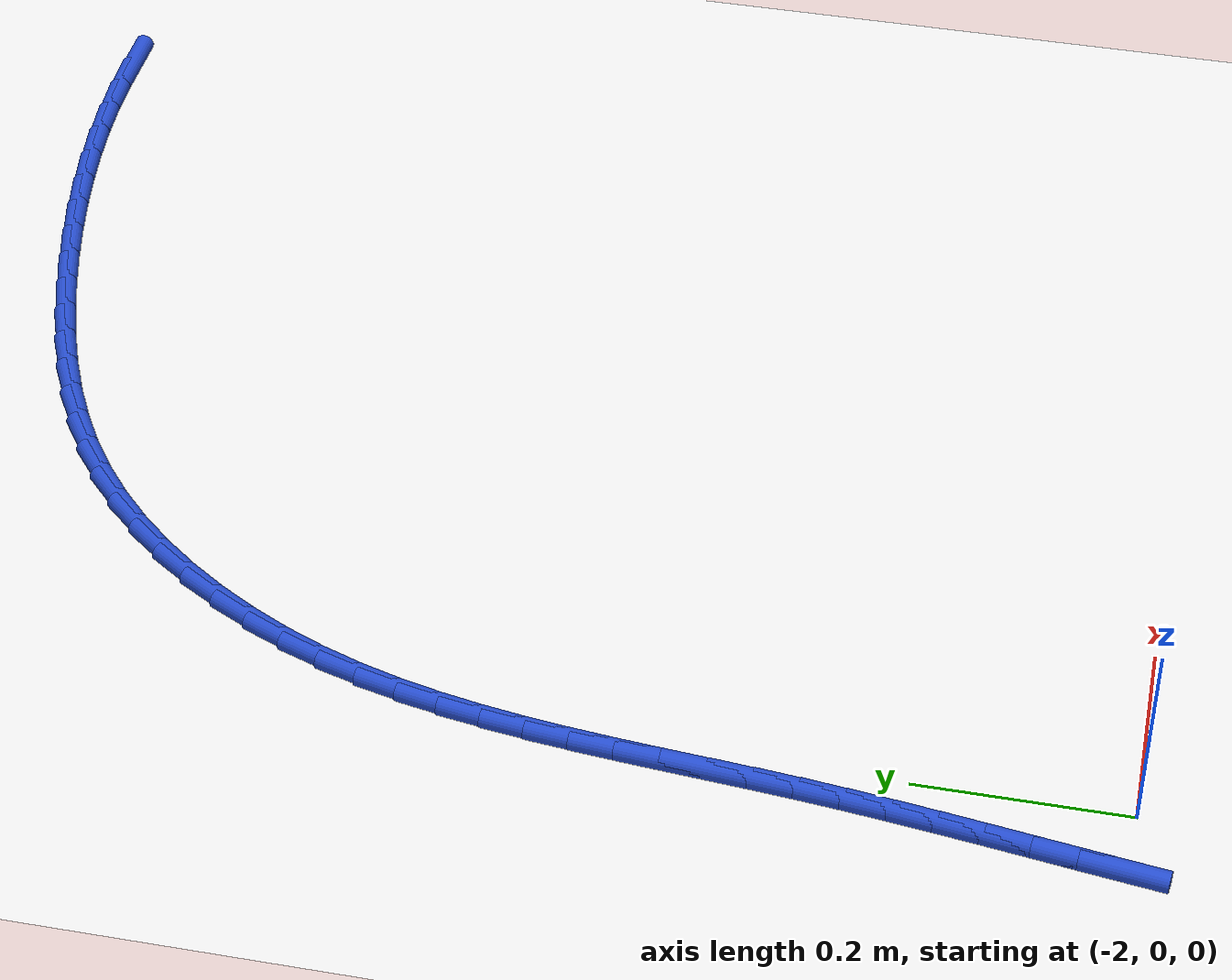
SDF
<sdf version="1.6">
 <world name="default">
  <model name="ground_plane">
   <static>1</static>
   <link name="link">
    <collision name="collision">
     <geometry><plane><normal>0 0 1</normal><size>100 100</size></plane></geometry>
     <surface><friction><ode><mu>100</mu><mu2>50</mu2></ode></friction></surface>
    </collision>
    <visual name="visual">
     <cast_shadows>0</cast_shadows>
     <geometry><plane><normal>0 0 1</normal><size>100 100</size></plane></geometry>
     <material>
      <script><uri>file://media/materials/scripts/gazebo.material</uri><name>Gazebo/WhiteGlow</name></script>
     </material>
    </visual>
   </link>
  </model>
  <model name="line">
   <link name="link_42">
    <pose>-1.123442656471563 1.1743255117677915 0.01 0 1.57 -0.03595506363216738</pose>
    <collision name="collision">
     <geometry><cylinder><radius>0.01</radius><length>0.08</length></cylinder></geometry>
    </collision>
    <visual name="visual">
     <material>
      <script><name>Gazebo/Blue</name><uri>file://media/materials/scripts/gazebo.material</uri></script>
     </material>
     <geometry><cylinder><radius>0.01</radius><length>0.08</length></cylinder></geometry>
    </visual>
   </link>
   <link name="link_43">
    <pose>-1.1651149336335065 1.17582448714229 0.01 0 1.57 0.005851475559722349</pose>
    <collision name="collision">
     <geometry><cylinder><radius>0.01</radius><length>0.08</length></cylinder></geometry>
    </collision>
    <visual name="visual">
     <material>
      <script><name>Gazebo/Blue</name><uri>file://media/materials/scripts/gazebo.material</uri></script>
     </material>
     <geometry><cylinder><radius>0.01</radius><length>0.08</length></cylinder></geometry>
    </visual>
   </link>
   <link name="link_44">
    <pose>-1.2069244893944777 1.1755798367563282 0.01 0 1.57 0.04558854154042361</pose>
    <collision name="collision">
     <geometry><cylinder><radius>0.01</radius><length>0.08</length></cylinder></geometry>
    </collision>
    <visual name="visual">
     <material>
      <script><name>Gazebo/Blue</name><uri>file://media/materials/scripts/gazebo.material</uri></script>
     </material>
     <geometry><cylinder><radius>0.01</radius><length>0.08</length></cylinder></geometry>
    </visual>
   </link>
   <link name="link_45">
    <pose>-1.2488105254313435 1.1736689894981298 0.01 0 1.57 0.08332622334259836</pose>
    <collision name="collision">
     <geometry><cylinder><radius>0.01</radius><length>0.08</length></cylinder></geometry>
    </collision>
    <visual name="visual">
     <material>
      <script><name>Gazebo/Blue</name><uri>file://media/materials/scripts/gazebo.material</uri></script>
     </material>
     <geometry><cylinder><radius>0.01</radius><length>0.08</length></cylinder></geometry>
    </visual>
   </link>
   <link name="link_46">
    <pose>-1.2907122434209712 1.1701693742559198 0.01 0 1.57 0.1191501121461086</pose>
    <collision name="collision">
     <geometry><cylinder><radius>0.01</radius><length>0.08</length></cylinder></geometry>
    </collision>
    <visual name="visual">
     <material>
      <script><name>Gazebo/Blue</name><uri>file://media/materials/scripts/gazebo.material</uri></script>
     </material>
     <geometry><cylinder><radius>0.01</radius><length>0.08</length></cylinder></geometry>
    </visual>
   </link>
   <link name="link_47">
    <pose>-1.3325688450402284 1.1651584199179215 0.01 0 1.57 0.15315660077320795</pose>
    <collision name="collision">
     <geometry><cylinder><radius>0.01</radius><length>0.08</length></cylinder></geometry>
    </collision>
    <visual name="visual">
     <material>
      <script><name>Gazebo/Blue</name><uri>file://media/materials/scripts/gazebo.material</uri></script>
     </material>
     <geometry><cylinder><radius>0.01</radius><length>0.08</length></cylinder></geometry>
    </visual>
   </link>
   <link name="link_48">
    <pose>-1.3743195319659818 1.15871355537236 0.01 0 1.57 0.18544902056028048</pose>
    <collision name="collision">
     <geometry><cylinder><radius>0.01</radius><length>0.08</length></cylinder></geometry>
    </collision>
    <visual name="visual">
     <material>
      <script><name>Gazebo/Blue</name><uri>file://media/materials/scripts/gazebo.material</uri></script>
     </material>
     <geometry><cylinder><radius>0.01</radius><length>0.08</length></cylinder></geometry>
    </visual>
   </link>
   <link name="link_49">
    <pose>-1.4159035058750993 1.150912209507459 0.01 0 1.57 0.21613457849729314</pose>
    <collision name="collision">
     <geometry><cylinder><radius>0.01</radius><length>0.08</length></cylinder></geometry>
    </collision>
    <visual name="visual">
     <material>
      <script><name>Gazebo/Blue</name><uri>file://media/materials/scripts/gazebo.material</uri></script>
     </material>
     <geometry><cylinder><radius>0.01</radius><length>0.08</length></cylinder></geometry>
    </visual>
   </link>
   <link name="link_50">
    <pose>-1.4572599684444478 1.1418318112114423 0.01 0 1.57 0.24533033604755863</pose>
    <collision name="collision">
     <geometry><cylinder><radius>0.01</radius><length>0.08</length></cylinder></geometry>
    </collision>
    <visual name="visual">
     <material>
      <script><name>Gazebo/Blue</name><uri>file://media/materials/scripts/gazebo.material</uri></script>
     </material>
     <geometry><cylinder><radius>0.01</radius><length>0.08</length></cylinder></geometry>
    </visual>
   </link>
   <link name="link_51">
    <pose>-1.4983279653092965 1.1315494654865548 0.01 0 1.57 0.2753581099417407</pose>
    <collision name="collision">
     <geometry><cylinder><radius>0.01</radius><length>0.08</length></cylinder></geometry>
    </collision>
    <visual name="visual">
     <material>
      <script><name>Gazebo/Blue</name><uri>file://media/materials/scripts/gazebo.material</uri></script>
     </material>
     <geometry><cylinder><radius>0.01</radius><length>0.08</length></cylinder></geometry>
    </visual>
   </link>
   <link name="link_52">
    <pose>-1.5390053042433967 1.120056682433804 0.01 0 1.57 0.31159260127298016</pose>
    <collision name="collision">
     <geometry><cylinder><radius>0.01</radius><length>0.08</length></cylinder></geometry>
    </collision>
    <visual name="visual">
     <material>
      <script><name>Gazebo/Blue</name><uri>file://media/materials/scripts/gazebo.material</uri></script>
     </material>
     <geometry><cylinder><radius>0.01</radius><length>0.08</length></cylinder></geometry>
    </visual>
   </link>
   <link name="link_53">
    <pose>-1.5790934151281 1.1071449264709938 0.01 0 1.57 0.35509095068433766</pose>
    <collision name="collision">
     <geometry><cylinder><radius>0.01</radius><length>0.08</length></cylinder></geometry>
    </collision>
    <visual name="visual">
     <material>
      <script><name>Gazebo/Blue</name><uri>file://media/materials/scripts/gazebo.material</uri></script>
     </material>
     <geometry><cylinder><radius>0.01</radius><length>0.08</length></cylinder></geometry>
    </visual>
   </link>
   <link name="link_54">
    <pose>-1.618379981838624 1.0925771302736345 0.01 0 1.57 0.40617832132936155</pose>
    <collision name="collision">
     <geometry><cylinder><radius>0.01</radius><length>0.08</length></cylinder></geometry>
    </collision>
    <visual name="visual">
     <material>
      <script><name>Gazebo/Blue</name><uri>file://media/materials/scripts/gazebo.material</uri></script>
     </material>
     <geometry><cylinder><radius>0.01</radius><length>0.08</length></cylinder></geometry>
    </visual>
   </link>
   <link name="link_55">
    <pose>-1.6566526882501853 1.076116226517235 0.01 0 1.57 0.46511093592235686</pose>
    <collision name="collision">
     <geometry><cylinder><radius>0.01</radius><length>0.08</length></cylinder></geometry>
    </collision>
    <visual name="visual">
     <material>
      <script><name>Gazebo/Blue</name><uri>file://media/materials/scripts/gazebo.material</uri></script>
     </material>
     <geometry><cylinder><radius>0.01</radius><length>0.08</length></cylinder></geometry>
    </visual>
   </link>
   <link name="link_56">
    <pose>-1.6936992182379995 1.0575251478773058 0.01 0 1.57 0.5319830866198535</pose>
    <collision name="collision">
     <geometry><cylinder><radius>0.01</radius><length>0.08</length></cylinder></geometry>
    </collision>
    <visual name="visual">
     <material>
      <script><name>Gazebo/Blue</name><uri>file://media/materials/scripts/gazebo.material</uri></script>
     </material>
     <geometry><cylinder><radius>0.01</radius><length>0.08</length></cylinder></geometry>
    </visual>
   </link>
   <link name="link_57">
    <pose>-1.7293072556772855 1.0365668270293573 0.01 0 1.57 0.6066144839632988</pose>
    <collision name="collision">
     <geometry><cylinder><radius>0.01</radius><length>0.08</length></cylinder></geometry>
    </collision>
    <visual name="visual">
     <material>
      <script><name>Gazebo/Blue</name><uri>file://media/materials/scripts/gazebo.material</uri></script>
     </material>
     <geometry><cylinder><radius>0.01</radius><length>0.08</length></cylinder></geometry>
    </visual>
   </link>
   <link name="link_58">
    <pose>-1.7632644844432581 1.013004196648898 0.01 0 1.57 0.6865693805805728</pose>
    <collision name="collision">
     <geometry><cylinder><radius>0.01</radius><length>0.08</length></cylinder></geometry>
    </collision>
    <visual name="visual">
     <material>
      <script><name>Gazebo/Blue</name><uri>file://media/materials/scripts/gazebo.material</uri></script>
     </material>
     <geometry><cylinder><radius>0.01</radius><length>0.08</length></cylinder></geometry>
    </visual>
   </link>
   <link name="link_59">
    <pose>-1.7953786654017523 0.9866838995297144 0.01 0 1.57 0.7638899788799208</pose>
    <collision name="collision">
     <geometry><cylinder><radius>0.01</radius><length>0.08</length></cylinder></geometry>
    </collision>
    <visual name="visual">
     <material>
      <script><name>Gazebo/Blue</name><uri>file://media/materials/scripts/gazebo.material</uri></script>
     </material>
     <geometry><cylinder><radius>0.01</radius><length>0.08</length></cylinder></geometry>
    </visual>
   </link>
   <link name="link_60">
    <pose>-1.8255393289238953 0.9577935127764157 0.01 0 1.57 0.8370963599257377</pose>
    <collision name="collision">
     <geometry><cylinder><radius>0.01</radius><length>0.08</length></cylinder></geometry>
    </collision>
    <visual name="visual">
     <material>
      <script><name>Gazebo/Blue</name><uri>file://media/materials/scripts/gazebo.material</uri></script>
     </material>
     <geometry><cylinder><radius>0.01</radius><length>0.08</length></cylinder></geometry>
    </visual>
   </link>
   <link name="link_61">
    <pose>-1.8536568197680543 0.9266073981542535 0.01 0 1.57 0.9068211389162819</pose>
    <collision name="collision">
     <geometry><cylinder><radius>0.01</radius><length>0.08</length></cylinder></geometry>
    </collision>
    <visual name="visual">
     <material>
      <script><name>Gazebo/Blue</name><uri>file://media/materials/scripts/gazebo.material</uri></script>
     </material>
     <geometry><cylinder><radius>0.01</radius><length>0.08</length></cylinder></geometry>
    </visual>
   </link>
   <link name="link_62">
    <pose>-1.8796414826970353 0.8933999174469992 0.01 0 1.57 0.9737540779613557</pose>
    <collision name="collision">
     <geometry><cylinder><radius>0.01</radius><length>0.08</length></cylinder></geometry>
    </collision>
    <visual name="visual">
     <material>
      <script><name>Gazebo/Blue</name><uri>file://media/materials/scripts/gazebo.material</uri></script>
     </material>
     <geometry><cylinder><radius>0.01</radius><length>0.08</length></cylinder></geometry>
    </visual>
   </link>
   <link name="link_63">
    <pose>-1.903403662473646 0.8584454324384238 0.01 0 1.57 1.0386171794501016</pose>
    <collision name="collision">
     <geometry><cylinder><radius>0.01</radius><length>0.08</length></cylinder></geometry>
    </collision>
    <visual name="visual">
     <material>
      <script><name>Gazebo/Blue</name><uri>file://media/materials/scripts/gazebo.material</uri></script>
     </material>
     <geometry><cylinder><radius>0.01</radius><length>0.08</length></cylinder></geometry>
    </visual>
   </link>
   <link name="link_64">
    <pose>-1.9248537038606925 0.8220183049122984 0.01 0 1.57 1.1021530866560902</pose>
    <collision name="collision">
     <geometry><cylinder><radius>0.01</radius><length>0.08</length></cylinder></geometry>
    </collision>
    <visual name="visual">
     <material>
      <script><name>Gazebo/Blue</name><uri>file://media/materials/scripts/gazebo.material</uri></script>
     </material>
     <geometry><cylinder><radius>0.01</radius><length>0.08</length></cylinder></geometry>
    </visual>
   </link>
   <link name="link_65">
    <pose>-1.9439019516209832 0.7843928966523953 0.01 0 1.57 1.165123325051818</pose>
    <collision name="collision">
     <geometry><cylinder><radius>0.01</radius><length>0.08</length></cylinder></geometry>
    </collision>
    <visual name="visual">
     <material>
      <script><name>Gazebo/Blue</name><uri>file://media/materials/scripts/gazebo.material</uri></script>
     </material>
     <geometry><cylinder><radius>0.01</radius><length>0.08</length></cylinder></geometry>
    </visual>
   </link>
   <link name="link_66">
    <pose>-1.960458750517325 0.7458435694424842 0.01 0 1.57 1.2278232726069838</pose>
    <collision name="collision">
     <geometry><cylinder><radius>0.01</radius><length>0.08</length></cylinder></geometry>
    </collision>
    <visual name="visual">
     <material>
      <script><name>Gazebo/Blue</name><uri>file://media/materials/scripts/gazebo.material</uri></script>
     </material>
     <geometry><cylinder><radius>0.01</radius><length>0.08</length></cylinder></geometry>
    </visual>
   </link>
   <link name="link_67">
    <pose>-1.9744612939809378 0.7066301480224619 0.01 0 1.57 1.2862970459717007</pose>
    <collision name="collision">
     <geometry><cylinder><radius>0.01</radius><length>0.08</length></cylinder></geometry>
    </collision>
    <visual name="visual">
     <material>
      <script><name>Gazebo/Blue</name><uri>file://media/materials/scripts/gazebo.material</uri></script>
     </material>
     <geometry><cylinder><radius>0.01</radius><length>0.08</length></cylinder></geometry>
    </visual>
   </link>
   <link name="link_68">
    <pose>-1.9860843980284681 0.6668837978670077 0.01 0 1.57 1.3378191165385243</pose>
    <collision name="collision">
     <geometry><cylinder><radius>0.01</radius><length>0.08</length></cylinder></geometry>
    </collision>
    <visual name="visual">
     <material>
      <script><name>Gazebo/Blue</name><uri>file://media/materials/scripts/gazebo.material</uri></script>
     </material>
     <geometry><cylinder><radius>0.01</radius><length>0.08</length></cylinder></geometry>
    </visual>
   </link>
   <link name="link_69">
    <pose>-1.99562691934425 0.6266685234057644 0.01 0 1.57 1.381990938745188</pose>
    <collision name="collision">
     <geometry><cylinder><radius>0.01</radius><length>0.08</length></cylinder></geometry>
    </collision>
    <visual name="visual">
     <material>
      <script><name>Gazebo/Blue</name><uri>file://media/materials/scripts/gazebo.material</uri></script>
     </material>
     <geometry><cylinder><radius>0.01</radius><length>0.08</length></cylinder></geometry>
    </visual>
   </link>
   <link name="link_70">
    <pose>-2.003388791272513 0.5860477461175947 0.01 0 1.57 1.4186436062493344</pose>
    <collision name="collision">
     <geometry><cylinder><radius>0.01</radius><length>0.08</length></cylinder></geometry>
    </collision>
    <visual name="visual">
     <material>
      <script><name>Gazebo/Blue</name><uri>file://media/materials/scripts/gazebo.material</uri></script>
     </material>
     <geometry><cylinder><radius>0.01</radius><length>0.08</length></cylinder></geometry>
    </visual>
   </link>
   <link name="link_71">
    <pose>-2.0096699471574895 0.5450848874813611 0.01 0 1.57 1.4477502582174562</pose>
    <collision name="collision">
     <geometry><cylinder><radius>0.01</radius><length>0.08</length></cylinder></geometry>
    </collision>
    <visual name="visual">
     <material>
      <script><name>Gazebo/Blue</name><uri>file://media/materials/scripts/gazebo.material</uri></script>
     </material>
     <geometry><cylinder><radius>0.01</radius><length>0.08</length></cylinder></geometry>
    </visual>
   </link>
   <link name="link_72">
    <pose>-2.0147703203434126 0.5038433689759272 0.01 0 1.57 1.4693642946234513</pose>
    <collision name="collision">
     <geometry><cylinder><radius>0.01</radius><length>0.08</length></cylinder></geometry>
    </collision>
    <visual name="visual">
     <material>
      <script><name>Gazebo/Blue</name><uri>file://media/materials/scripts/gazebo.material</uri></script>
     </material>
     <geometry><cylinder><radius>0.01</radius><length>0.08</length></cylinder></geometry>
    </visual>
   </link>
   <link name="link_73">
    <pose>-2.0189898441745124 0.4623866120801559 0.01 0 1.57 1.4835697119463425</pose>
    <collision name="collision">
     <geometry><cylinder><radius>0.01</radius><length>0.08</length></cylinder></geometry>
    </collision>
    <visual name="visual">
     <material>
      <script><name>Gazebo/Blue</name><uri>file://media/materials/scripts/gazebo.material</uri></script>
     </material>
     <geometry><cylinder><radius>0.01</radius><length>0.08</length></cylinder></geometry>
    </visual>
   </link>
   <link name="link_74">
    <pose>-2.022628451995021 0.42077803827290927 0.01 0 1.57 1.4904452565802997</pose>
    <collision name="collision">
     <geometry><cylinder><radius>0.01</radius><length>0.08</length></cylinder></geometry>
    </collision>
    <visual name="visual">
     <material>
      <script><name>Gazebo/Blue</name><uri>file://media/materials/scripts/gazebo.material</uri></script>
     </material>
     <geometry><cylinder><radius>0.01</radius><length>0.08</length></cylinder></geometry>
    </visual>
   </link>
   <link name="link_75">
    <pose>-2.02598607714917 0.37908106903305133 0.01 0 1.57 1.4900418721017965</pose>
    <collision name="collision">
     <geometry><cylinder><radius>0.01</radius><length>0.08</length></cylinder></geometry>
    </collision>
    <visual name="visual">
     <material>
      <script><name>Gazebo/Blue</name><uri>file://media/materials/scripts/gazebo.material</uri></script>
     </material>
     <geometry><cylinder><radius>0.01</radius><length>0.08</length></cylinder></geometry>
    </visual>
   </link>
   <link name="link_76">
    <pose>-2.029362652981191 0.3373591258394445 0.01 0 1.57 1.4823722778581816</pose>
    <collision name="collision">
     <geometry><cylinder><radius>0.01</radius><length>0.08</length></cylinder></geometry>
    </collision>
    <visual name="visual">
     <material>
      <script><name>Gazebo/Blue</name><uri>file://media/materials/scripts/gazebo.material</uri></script>
     </material>
     <geometry><cylinder><radius>0.01</radius><length>0.08</length></cylinder></geometry>
    </visual>
   </link>
   <link name="link_77">
    <pose>-2.0330581128353153 0.29567563017095144 0.01 0 1.57 1.4684773141866665</pose>
    <collision name="collision">
     <geometry><cylinder><radius>0.01</radius><length>0.08</length></cylinder></geometry>
    </collision>
    <visual name="visual">
     <material>
      <script><name>Gazebo/Blue</name><uri>file://media/materials/scripts/gazebo.material</uri></script>
     </material>
     <geometry><cylinder><radius>0.01</radius><length>0.08</length></cylinder></geometry>
    </visual>
   </link>
   <link name="link_78">
    <pose>-2.037328428090602 0.2540860711830503 0.01 0 1.57 1.4549609807632753</pose>
    <collision name="collision">
     <geometry><cylinder><radius>0.01</radius><length>0.08</length></cylinder></geometry>
    </collision>
    <visual name="visual">
     <material>
      <script><name>Gazebo/Blue</name><uri>file://media/materials/scripts/gazebo.material</uri></script>
     </material>
     <geometry><cylinder><radius>0.01</radius><length>0.08</length></cylinder></geometry>
    </visual>
   </link>
   <link name="link_79">
    <pose>-2.0421559894624948 0.21259657421667486 0.01 0 1.57 1.44437653615921</pose>
    <collision name="collision">
     <geometry><cylinder><radius>0.01</radius><length>0.08</length></cylinder></geometry>
    </collision>
    <visual name="visual">
     <material>
      <script><name>Gazebo/Blue</name><uri>file://media/materials/scripts/gazebo.material</uri></script>
     </material>
     <geometry><cylinder><radius>0.01</radius><length>0.08</length></cylinder></geometry>
    </visual>
   </link>
   <link name="link_80">
    <pose>-2.0474181184641007 0.17119430634081964 0.01 0 1.57 1.43673751962326</pose>
    <collision name="collision">
     <geometry><cylinder><radius>0.01</radius><length>0.08</length></cylinder></geometry>
    </collision>
    <visual name="visual">
     <material>
      <script><name>Gazebo/Blue</name><uri>file://media/materials/scripts/gazebo.material</uri></script>
     </material>
     <geometry><cylinder><radius>0.01</radius><length>0.08</length></cylinder></geometry>
    </visual>
   </link>
   <link name="link_81">
    <pose>-2.0529919193235413 0.1298663954184337 0.01 0 1.57 1.4320503162291487</pose>
    <collision name="collision">
     <geometry><cylinder><radius>0.01</radius><length>0.08</length></cylinder></geometry>
    </collision>
    <visual name="visual">
     <material>
      <script><name>Gazebo/Blue</name><uri>file://media/materials/scripts/gazebo.material</uri></script>
     </material>
     <geometry><cylinder><radius>0.01</radius><length>0.08</length></cylinder></geometry>
    </visual>
   </link>
   <link name="link_82">
    <pose>-2.058754496268939 0.08859996931246641 0.01 0 1.57 1.430321415375783</pose>
    <collision name="collision">
     <geometry><cylinder><radius>0.01</radius><length>0.08</length></cylinder></geometry>
    </collision>
    <visual name="visual">
     <material>
      <script><name>Gazebo/Blue</name><uri>file://media/materials/scripts/gazebo.material</uri></script>
     </material>
     <geometry><cylinder><radius>0.01</radius><length>0.08</length></cylinder></geometry>
    </visual>
   </link>
   <link name="link_83">
    <pose>-2.0645829535284164 0.04738215588586791 0.01 0 1.57 1.4315586471073556</pose>
    <collision name="collision">
     <geometry><cylinder><radius>0.01</radius><length>0.08</length></cylinder></geometry>
    </collision>
    <visual name="visual">
     <material>
      <script><name>Gazebo/Blue</name><uri>file://media/materials/scripts/gazebo.material</uri></script>
     </material>
     <geometry><cylinder><radius>0.01</radius><length>0.08</length></cylinder></geometry>
    </visual>
   </link>
   <link name="link_84">
    <pose>-2.0703543953300962 0.006200083001587 0.01 0 1.57 1.4357716512332173</pose>
    <collision name="collision">
     <geometry><cylinder><radius>0.01</radius><length>0.08</length></cylinder></geometry>
    </collision>
    <visual name="visual">
     <material>
      <script><name>Gazebo/Blue</name><uri>file://media/materials/scripts/gazebo.material</uri></script>
     </material>
     <geometry><cylinder><radius>0.01</radius><length>0.08</length></cylinder></geometry>
    </visual>
   </link>
  </model>
 </world>
</sdf>
